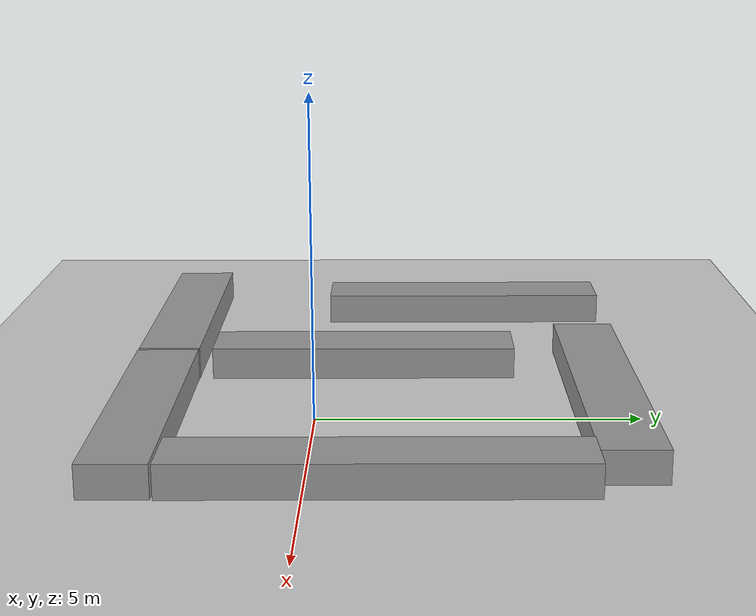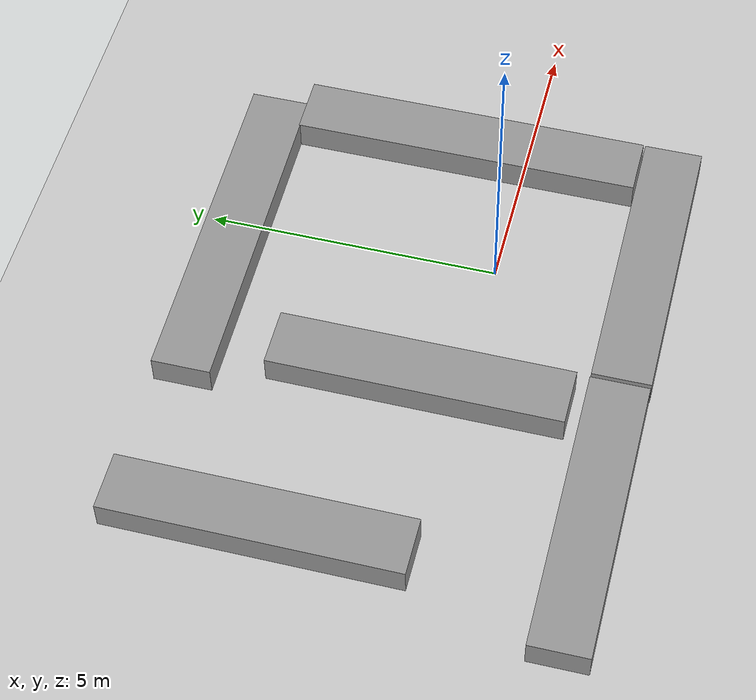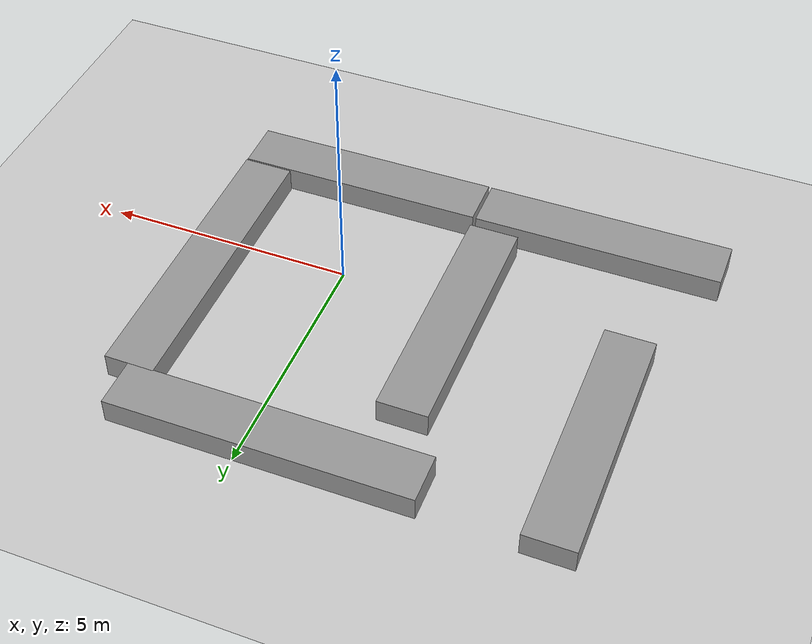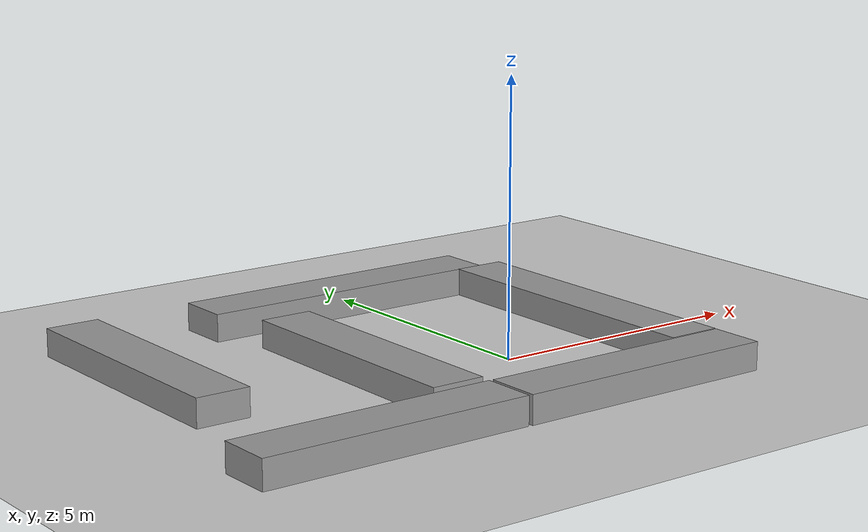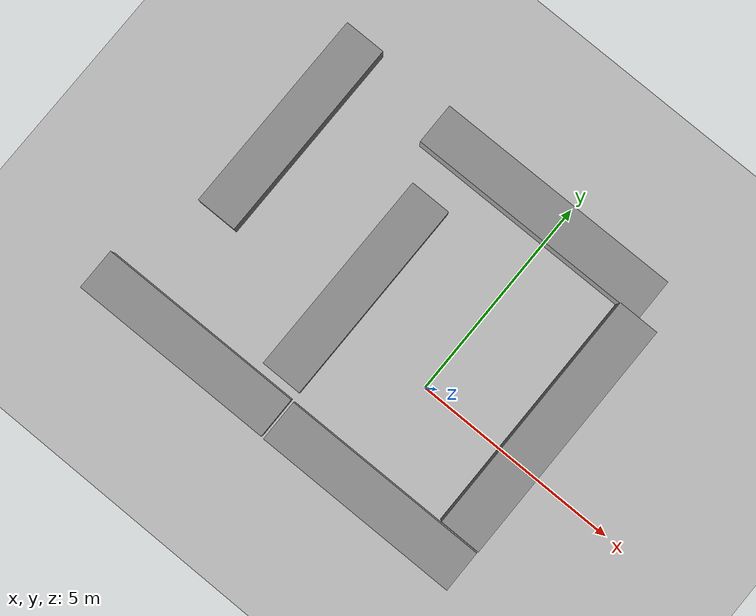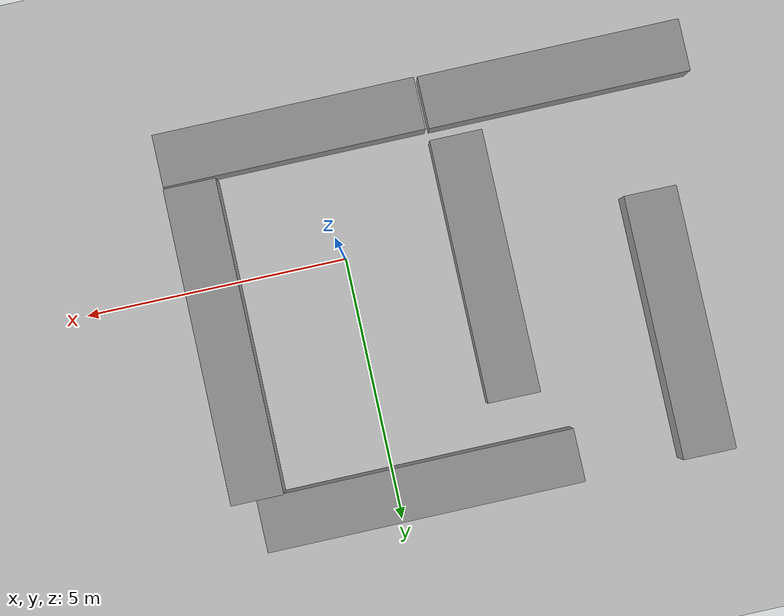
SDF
<sdf version="1.7">
 <world name="default">
  <light name="sun" type="directional">
   <pose>0 0 10 0 -0 0</pose>
   <diffuse>0.8 0.8 0.8 1</diffuse>
   <specular>0.2 0.2 0.2 1</specular>
   <attenuation>
    <range>1000</range>
    <constant>0.9</constant>
    <linear>0.01</linear>
    <quadratic>0.001</quadratic>
   </attenuation>
   <direction>-0.5 0.1 -0.9</direction>
   <spot><inner_angle>0</inner_angle><outer_angle>0</outer_angle><falloff>0</falloff></spot>
  </light>
  <model name="ground_plane">
   <static>1</static>
   <link name="link">
    <collision name="collision">
     <geometry><plane><normal>0 0 1</normal><size>100 100</size></plane></geometry>
     <surface>
      <contact><collide_bitmask>65535</collide_bitmask></contact>
      <friction><ode><mu>100</mu><mu2>50</mu2></ode></friction>
     </surface>
    </collision>
    <visual name="visual">
     <cast_shadows>0</cast_shadows>
     <geometry><plane><normal>0 0 1</normal><size>100 100</size></plane></geometry>
     <material>
      <script><uri>file://media/materials/scripts/gazebo.material</uri><name>Gazebo/Grey</name></script>
     </material>
    </visual>
   </link>
  </model>
  <gravity>0 0 -9.8</gravity>
  <magnetic_field>6e-06 2.3e-05 -4.2e-05</magnetic_field>
  <atmosphere type="adiabatic"/>
  <physics name="default_physics" default="0" type="ode">
   <max_step_size>0.001</max_step_size>
   <real_time_factor>1</real_time_factor>
   <real_time_update_rate>1000</real_time_update_rate>
  </physics>
  <scene><ambient>0.4 0.4 0.4 1</ambient><background>0.7 0.7 0.7 1</background><shadows>1</shadows></scene>
  <audio><device>default</device></audio>
  <spherical_coordinates>
   <surface_model>EARTH_WGS84</surface_model>
   <latitude_deg>0</latitude_deg>
   <longitude_deg>0</longitude_deg>
   <elevation>0</elevation>
   <heading_deg>0</heading_deg>
  </spherical_coordinates>
  <model name="livingroom">
   <link name="link">
    <inertial>
     <mass>1</mass>
     <inertia>
      <ixx>0.166667</ixx>
      <ixy>0</ixy>
      <ixz>0</ixz>
      <iyy>0.166667</iyy>
      <iyz>0</iyz>
      <izz>0.166667</izz>
     </inertia>
    </inertial>
    <pose>0.99673 0.007553 -0 0 -0 0.004156</pose>
    <visual name="visual">
     <geometry><box><size>5 1 1</size></box></geometry>
     <material>
      <script><name>Gazebo/Grey</name><uri>file://media/materials/scripts/gazebo.material</uri></script>
      <shader type="vertex"><normal_map>__default__</normal_map></shader>
      <ambient>0.3 0.3 0.3 1</ambient>
      <diffuse>0.7 0.7 0.7 1</diffuse>
      <specular>0.01 0.01 0.01 1</specular>
      <emissive>0 0 0 1</emissive>
     </material>
    </visual>
    <collision name="collision">
     <geometry><box><size>5 1 1</size></box></geometry>
     <surface>
      <friction>
       <ode><mu>1</mu><mu2>1</mu2><fdir1>0 0 0</fdir1><slip1>0</slip1><slip2>0</slip2></ode>
       <torsional>
        <coefficient>1</coefficient>
        <patch_radius>0</patch_radius>
        <surface_radius>0</surface_radius>
        <use_patch_radius>1</use_patch_radius>
        <ode><slip>0</slip></ode>
       </torsional>
      </friction>
      <bounce><restitution_coefficient>0</restitution_coefficient><threshold>1e+06</threshold></bounce>
      <contact>
       <collide_without_contact>0</collide_without_contact>
       <collide_without_contact_bitmask>1</collide_without_contact_bitmask>
       <collide_bitmask>1</collide_bitmask>
       <ode>
        <soft_cfm>0</soft_cfm>
        <soft_erp>0.2</soft_erp>
        <kp>1e+13</kp>
        <kd>1</kd>
        <max_vel>0.01</max_vel>
        <min_depth>0</min_depth>
       </ode>
       <bullet>
        <split_impulse>1</split_impulse>
        <split_impulse_penetration_threshold>-0.01</split_impulse_penetration_threshold>
        <soft_cfm>0</soft_cfm>
        <soft_erp>0.2</soft_erp>
        <kp>1e+13</kp>
        <kd>1</kd>
       </bullet>
      </contact>
     </surface>
    </collision>
   </link>
   <link name="link_0">
    <inertial>
     <mass>1</mass>
     <inertia>
      <ixx>0.166667</ixx>
      <ixy>0</ixy>
      <ixz>0</ixz>
      <iyy>0.166667</iyy>
      <iyz>0</iyz>
      <izz>0.166667</izz>
     </inertia>
    </inertial>
    <pose>-2.0348 3.22322 -2.7e-05 -1e-05 -0 0</pose>
    <visual name="visual">
     <geometry><box><size>1 5 1</size></box></geometry>
     <material>
      <lighting>1</lighting>
      <script><uri>file://media/materials/scripts/gazebo.material</uri><name>Gazebo/Grey</name></script>
      <shader type="vertex"><normal_map>__default__</normal_map></shader>
      <ambient>0.3 0.3 0.3 1</ambient>
      <diffuse>0.7 0.7 0.7 1</diffuse>
      <specular>0.01 0.01 0.01 1</specular>
      <emissive>0 0 0 1</emissive>
     </material>
    </visual>
    <collision name="collision">
     <geometry><box><size>1 5 1</size></box></geometry>
     <surface>
      <friction>
       <ode><mu>1</mu><mu2>1</mu2><fdir1>0 0 0</fdir1><slip1>0</slip1><slip2>0</slip2></ode>
       <torsional>
        <coefficient>1</coefficient>
        <patch_radius>0</patch_radius>
        <surface_radius>0</surface_radius>
        <use_patch_radius>1</use_patch_radius>
        <ode><slip>0</slip></ode>
       </torsional>
      </friction>
      <bounce><restitution_coefficient>0</restitution_coefficient><threshold>1e+06</threshold></bounce>
      <contact>
       <collide_without_contact>0</collide_without_contact>
       <collide_without_contact_bitmask>1</collide_without_contact_bitmask>
       <collide_bitmask>1</collide_bitmask>
       <ode>
        <soft_cfm>0</soft_cfm>
        <soft_erp>0.2</soft_erp>
        <kp>1e+13</kp>
        <kd>1</kd>
        <max_vel>0.01</max_vel>
        <min_depth>0</min_depth>
       </ode>
       <bullet>
        <split_impulse>1</split_impulse>
        <split_impulse_penetration_threshold>-0.01</split_impulse_penetration_threshold>
        <soft_cfm>0</soft_cfm>
        <soft_erp>0.2</soft_erp>
        <kp>1e+13</kp>
        <kd>1</kd>
       </bullet>
      </contact>
     </surface>
    </collision>
   </link>
   <link name="link_0_clone">
    <inertial>
     <mass>1</mass>
     <inertia>
      <ixx>0.166667</ixx>
      <ixy>0</ixy>
      <ixz>0</ixz>
      <iyy>0.166667</iyy>
      <iyz>0</iyz>
      <izz>0.166667</izz>
     </inertia>
    </inertial>
    <pose>-5.33796 5.01595 -7.6e-05 -2e-05 0 0</pose>
    <visual name="visual">
     <geometry><box><size>1 5 1</size></box></geometry>
     <material>
      <lighting>1</lighting>
      <script><uri>file://media/materials/scripts/gazebo.material</uri><name>Gazebo/Grey</name></script>
      <shader type="vertex"><normal_map>__default__</normal_map></shader>
      <ambient>0.3 0.3 0.3 1</ambient>
      <diffuse>0.7 0.7 0.7 1</diffuse>
      <specular>0.01 0.01 0.01 1</specular>
      <emissive>0 0 0 1</emissive>
     </material>
    </visual>
    <collision name="collision">
     <geometry><box><size>1 5 1</size></box></geometry>
     <surface>
      <friction>
       <ode><mu>1</mu><mu2>1</mu2><fdir1>0 0 0</fdir1><slip1>0</slip1><slip2>0</slip2></ode>
       <torsional>
        <coefficient>1</coefficient>
        <patch_radius>0</patch_radius>
        <surface_radius>0</surface_radius>
        <use_patch_radius>1</use_patch_radius>
        <ode><slip>0</slip></ode>
       </torsional>
      </friction>
      <bounce><restitution_coefficient>0</restitution_coefficient><threshold>1e+06</threshold></bounce>
      <contact>
       <collide_without_contact>0</collide_without_contact>
       <collide_without_contact_bitmask>1</collide_without_contact_bitmask>
       <collide_bitmask>1</collide_bitmask>
       <ode>
        <soft_cfm>0</soft_cfm>
        <soft_erp>0.2</soft_erp>
        <kp>1e+13</kp>
        <kd>1</kd>
        <max_vel>0.01</max_vel>
        <min_depth>0</min_depth>
       </ode>
       <bullet>
        <split_impulse>1</split_impulse>
        <split_impulse_penetration_threshold>-0.01</split_impulse_penetration_threshold>
        <soft_cfm>0</soft_cfm>
        <soft_erp>0.2</soft_erp>
        <kp>1e+13</kp>
        <kd>1</kd>
       </bullet>
      </contact>
     </surface>
    </collision>
   </link>
   <link name="link_1">
    <inertial>
     <mass>1</mass>
     <inertia>
      <ixx>0.166667</ixx>
      <ixy>0</ixy>
      <ixz>0</ixz>
      <iyy>0.166667</iyy>
      <iyz>0</iyz>
      <izz>0.166667</izz>
     </inertia>
    </inertial>
    <pose>3.00672 3.55174 -3e-05 -1e-05 -0 0</pose>
    <visual name="visual">
     <geometry><box><size>1 6 1</size></box></geometry>
     <material>
      <lighting>1</lighting>
      <script><uri>file://media/materials/scripts/gazebo.material</uri><name>Gazebo/Grey</name></script>
      <shader type="vertex"><normal_map>__default__</normal_map></shader>
      <ambient>0.3 0.3 0.3 1</ambient>
      <diffuse>0.7 0.7 0.7 1</diffuse>
      <specular>0.01 0.01 0.01 1</specular>
      <emissive>0 0 0 1</emissive>
     </material>
    </visual>
    <collision name="collision">
     <geometry><box><size>1 6 1</size></box></geometry>
     <surface>
      <friction>
       <ode><mu>1</mu><mu2>1</mu2><fdir1>0 0 0</fdir1><slip1>0</slip1><slip2>0</slip2></ode>
       <torsional>
        <coefficient>1</coefficient>
        <patch_radius>0</patch_radius>
        <surface_radius>0</surface_radius>
        <use_patch_radius>1</use_patch_radius>
        <ode><slip>0</slip></ode>
       </torsional>
      </friction>
      <bounce><restitution_coefficient>0</restitution_coefficient><threshold>1e+06</threshold></bounce>
      <contact>
       <collide_without_contact>0</collide_without_contact>
       <collide_without_contact_bitmask>1</collide_without_contact_bitmask>
       <collide_bitmask>1</collide_bitmask>
       <ode>
        <soft_cfm>0</soft_cfm>
        <soft_erp>0.2</soft_erp>
        <kp>1e+13</kp>
        <kd>1</kd>
        <max_vel>0.01</max_vel>
        <min_depth>0</min_depth>
       </ode>
       <bullet>
        <split_impulse>1</split_impulse>
        <split_impulse_penetration_threshold>-0.01</split_impulse_penetration_threshold>
        <soft_cfm>0</soft_cfm>
        <soft_erp>0.2</soft_erp>
        <kp>1e+13</kp>
        <kd>1</kd>
       </bullet>
      </contact>
     </surface>
    </collision>
   </link>
   <link name="link_clone">
    <inertial>
     <mass>1</mass>
     <inertia>
      <ixx>0.166667</ixx>
      <ixy>0</ixy>
      <ixz>0</ixz>
      <iyy>0.166667</iyy>
      <iyz>0</iyz>
      <izz>0.166667</izz>
     </inertia>
    </inertial>
    <pose>0.02056 7.02418 -6.9e-05 -1e-05 0 0.004156</pose>
    <visual name="visual">
     <geometry><box><size>6 1 1</size></box></geometry>
     <material>
      <script><name>Gazebo/Grey</name><uri>file://media/materials/scripts/gazebo.material</uri></script>
      <shader type="vertex"><normal_map>__default__</normal_map></shader>
      <ambient>0.3 0.3 0.3 1</ambient>
      <diffuse>0.7 0.7 0.7 1</diffuse>
      <specular>0.01 0.01 0.01 1</specular>
      <emissive>0 0 0 1</emissive>
     </material>
    </visual>
    <collision name="collision">
     <geometry><box><size>6 1 1</size></box></geometry>
     <surface>
      <friction>
       <ode><mu>1</mu><mu2>1</mu2><fdir1>0 0 0</fdir1><slip1>0</slip1><slip2>0</slip2></ode>
       <torsional>
        <coefficient>1</coefficient>
        <patch_radius>0</patch_radius>
        <surface_radius>0</surface_radius>
        <use_patch_radius>1</use_patch_radius>
        <ode><slip>0</slip></ode>
       </torsional>
      </friction>
      <bounce><restitution_coefficient>0</restitution_coefficient><threshold>1e+06</threshold></bounce>
      <contact>
       <collide_without_contact>0</collide_without_contact>
       <collide_without_contact_bitmask>1</collide_without_contact_bitmask>
       <collide_bitmask>1</collide_bitmask>
       <ode>
        <soft_cfm>0</soft_cfm>
        <soft_erp>0.2</soft_erp>
        <kp>1e+13</kp>
        <kd>1</kd>
        <max_vel>0.01</max_vel>
        <min_depth>0</min_depth>
       </ode>
       <bullet>
        <split_impulse>1</split_impulse>
        <split_impulse_penetration_threshold>-0.01</split_impulse_penetration_threshold>
        <soft_cfm>0</soft_cfm>
        <soft_erp>0.2</soft_erp>
        <kp>1e+13</kp>
        <kd>1</kd>
       </bullet>
      </contact>
     </surface>
    </collision>
   </link>
   <link name="link_clone_0">
    <inertial>
     <mass>1</mass>
     <inertia>
      <ixx>0.166667</ixx>
      <ixy>0</ixy>
      <ixz>0</ixz>
      <iyy>0.166667</iyy>
      <iyz>0</iyz>
      <izz>0.166667</izz>
     </inertia>
    </inertial>
    <pose>-4.06986 -0.004483 0 -1e-05 0 0.004156</pose>
    <visual name="visual">
     <geometry><box><size>5 1 1</size></box></geometry>
     <material>
      <script><name>Gazebo/Grey</name><uri>file://media/materials/scripts/gazebo.material</uri></script>
      <shader type="vertex"><normal_map>__default__</normal_map></shader>
      <ambient>0.3 0.3 0.3 1</ambient>
      <diffuse>0.7 0.7 0.7 1</diffuse>
      <specular>0.01 0.01 0.01 1</specular>
      <emissive>0 0 0 1</emissive>
     </material>
    </visual>
    <collision name="collision">
     <geometry><box><size>5 1 1</size></box></geometry>
     <surface>
      <friction>
       <ode><mu>1</mu><mu2>1</mu2><fdir1>0 0 0</fdir1><slip1>0</slip1><slip2>0</slip2></ode>
       <torsional>
        <coefficient>1</coefficient>
        <patch_radius>0</patch_radius>
        <surface_radius>0</surface_radius>
        <use_patch_radius>1</use_patch_radius>
        <ode><slip>0</slip></ode>
       </torsional>
      </friction>
      <bounce><restitution_coefficient>0</restitution_coefficient><threshold>1e+06</threshold></bounce>
      <contact>
       <collide_without_contact>0</collide_without_contact>
       <collide_without_contact_bitmask>1</collide_without_contact_bitmask>
       <collide_bitmask>1</collide_bitmask>
       <ode>
        <soft_cfm>0</soft_cfm>
        <soft_erp>0.2</soft_erp>
        <kp>1e+13</kp>
        <kd>1</kd>
        <max_vel>0.01</max_vel>
        <min_depth>0</min_depth>
       </ode>
       <bullet>
        <split_impulse>1</split_impulse>
        <split_impulse_penetration_threshold>-0.01</split_impulse_penetration_threshold>
        <soft_cfm>0</soft_cfm>
        <soft_erp>0.2</soft_erp>
        <kp>1e+13</kp>
        <kd>1</kd>
       </bullet>
      </contact>
     </surface>
    </collision>
   </link>
   <static>1</static>
   <pose>-0.474768 -2.52403 0 0 -0 0</pose>
  </model>
 </world>
</sdf>
